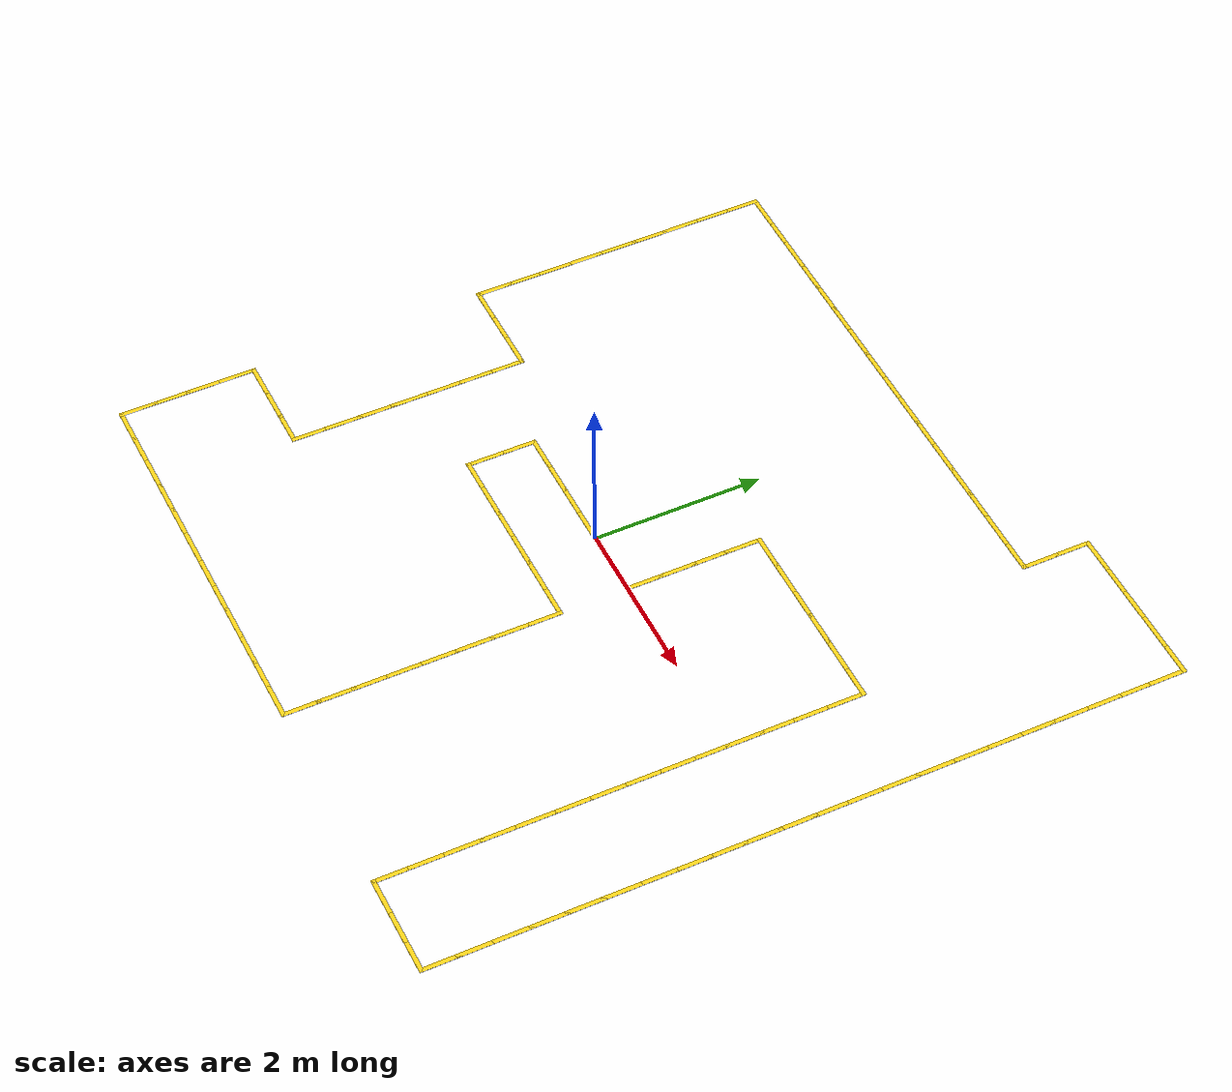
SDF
<sdf version="1.9">
 <world name="slrc_arena_from_image">
  <model name="hostile_path">
   <static>true</static>
   <link name="link">
    <visual name="seg0_vis">
     <pose>-3.8000 4.0000 0.0046 0.0000 0.0000 0.0000</pose>
     <geometry><box><size>0.4500 0.0500 0.0040</size></box></geometry>
     <material>
      <ambient>1.000 0.850 0.100 1.000</ambient>
      <diffuse>1.000 0.850 0.100 1.000</diffuse>
      <emissive>1.000 0.850 0.100 1.000</emissive>
      <specular>0 0 0 1</specular>
     </material>
    </visual>
    <visual name="seg1_vis">
     <pose>-3.4000 4.0000 0.0046 0.0000 0.0000 0.0000</pose>
     <geometry><box><size>0.4500 0.0500 0.0040</size></box></geometry>
     <material>
      <ambient>1.000 0.850 0.100 1.000</ambient>
      <diffuse>1.000 0.850 0.100 1.000</diffuse>
      <emissive>1.000 0.850 0.100 1.000</emissive>
      <specular>0 0 0 1</specular>
     </material>
    </visual>
    <visual name="seg2_vis">
     <pose>-3.0000 4.0000 0.0046 0.0000 0.0000 0.0000</pose>
     <geometry><box><size>0.4500 0.0500 0.0040</size></box></geometry>
     <material>
      <ambient>1.000 0.850 0.100 1.000</ambient>
      <diffuse>1.000 0.850 0.100 1.000</diffuse>
      <emissive>1.000 0.850 0.100 1.000</emissive>
      <specular>0 0 0 1</specular>
     </material>
    </visual>
    <visual name="seg3_vis">
     <pose>-2.6000 4.0000 0.0046 0.0000 0.0000 0.0000</pose>
     <geometry><box><size>0.4500 0.0500 0.0040</size></box></geometry>
     <material>
      <ambient>1.000 0.850 0.100 1.000</ambient>
      <diffuse>1.000 0.850 0.100 1.000</diffuse>
      <emissive>1.000 0.850 0.100 1.000</emissive>
      <specular>0 0 0 1</specular>
     </material>
    </visual>
    <visual name="seg4_vis">
     <pose>-2.2000 4.0000 0.0046 0.0000 0.0000 0.0000</pose>
     <geometry><box><size>0.4500 0.0500 0.0040</size></box></geometry>
     <material>
      <ambient>1.000 0.850 0.100 1.000</ambient>
      <diffuse>1.000 0.850 0.100 1.000</diffuse>
      <emissive>1.000 0.850 0.100 1.000</emissive>
      <specular>0 0 0 1</specular>
     </material>
    </visual>
    <visual name="seg5_vis">
     <pose>-1.8000 4.0000 0.0046 0.0000 0.0000 0.0000</pose>
     <geometry><box><size>0.4500 0.0500 0.0040</size></box></geometry>
     <material>
      <ambient>1.000 0.850 0.100 1.000</ambient>
      <diffuse>1.000 0.850 0.100 1.000</diffuse>
      <emissive>1.000 0.850 0.100 1.000</emissive>
      <specular>0 0 0 1</specular>
     </material>
    </visual>
    <visual name="seg6_vis">
     <pose>-1.4000 4.0000 0.0046 0.0000 0.0000 0.0000</pose>
     <geometry><box><size>0.4500 0.0500 0.0040</size></box></geometry>
     <material>
      <ambient>1.000 0.850 0.100 1.000</ambient>
      <diffuse>1.000 0.850 0.100 1.000</diffuse>
      <emissive>1.000 0.850 0.100 1.000</emissive>
      <specular>0 0 0 1</specular>
     </material>
    </visual>
    <visual name="seg7_vis">
     <pose>-1.0000 4.0000 0.0046 0.0000 0.0000 0.0000</pose>
     <geometry><box><size>0.4500 0.0500 0.0040</size></box></geometry>
     <material>
      <ambient>1.000 0.850 0.100 1.000</ambient>
      <diffuse>1.000 0.850 0.100 1.000</diffuse>
      <emissive>1.000 0.850 0.100 1.000</emissive>
      <specular>0 0 0 1</specular>
     </material>
    </visual>
    <visual name="seg8_vis">
     <pose>-0.6000 4.0000 0.0046 0.0000 0.0000 0.0000</pose>
     <geometry><box><size>0.4500 0.0500 0.0040</size></box></geometry>
     <material>
      <ambient>1.000 0.850 0.100 1.000</ambient>
      <diffuse>1.000 0.850 0.100 1.000</diffuse>
      <emissive>1.000 0.850 0.100 1.000</emissive>
      <specular>0 0 0 1</specular>
     </material>
    </visual>
    <visual name="seg9_vis">
     <pose>-0.2000 4.0000 0.0046 0.0000 0.0000 0.0000</pose>
     <geometry><box><size>0.4500 0.0500 0.0040</size></box></geometry>
     <material>
      <ambient>1.000 0.850 0.100 1.000</ambient>
      <diffuse>1.000 0.850 0.100 1.000</diffuse>
      <emissive>1.000 0.850 0.100 1.000</emissive>
      <specular>0 0 0 1</specular>
     </material>
    </visual>
    <visual name="seg10_vis">
     <pose>0.2000 4.0000 0.0046 0.0000 0.0000 0.0000</pose>
     <geometry><box><size>0.4500 0.0500 0.0040</size></box></geometry>
     <material>
      <ambient>1.000 0.850 0.100 1.000</ambient>
      <diffuse>1.000 0.850 0.100 1.000</diffuse>
      <emissive>1.000 0.850 0.100 1.000</emissive>
      <specular>0 0 0 1</specular>
     </material>
    </visual>
    <visual name="seg11_vis">
     <pose>0.6000 4.0000 0.0046 0.0000 0.0000 0.0000</pose>
     <geometry><box><size>0.4500 0.0500 0.0040</size></box></geometry>
     <material>
      <ambient>1.000 0.850 0.100 1.000</ambient>
      <diffuse>1.000 0.850 0.100 1.000</diffuse>
      <emissive>1.000 0.850 0.100 1.000</emissive>
      <specular>0 0 0 1</specular>
     </material>
    </visual>
    <visual name="seg12_vis">
     <pose>1.0000 4.0000 0.0046 0.0000 0.0000 0.0000</pose>
     <geometry><box><size>0.4500 0.0500 0.0040</size></box></geometry>
     <material>
      <ambient>1.000 0.850 0.100 1.000</ambient>
      <diffuse>1.000 0.850 0.100 1.000</diffuse>
      <emissive>1.000 0.850 0.100 1.000</emissive>
      <specular>0 0 0 1</specular>
     </material>
    </visual>
    <visual name="seg13_vis">
     <pose>1.4000 4.0000 0.0046 0.0000 0.0000 0.0000</pose>
     <geometry><box><size>0.4500 0.0500 0.0040</size></box></geometry>
     <material>
      <ambient>1.000 0.850 0.100 1.000</ambient>
      <diffuse>1.000 0.850 0.100 1.000</diffuse>
      <emissive>1.000 0.850 0.100 1.000</emissive>
      <specular>0 0 0 1</specular>
     </material>
    </visual>
    <visual name="seg14_vis">
     <pose>1.8000 4.0000 0.0046 0.0000 0.0000 0.0000</pose>
     <geometry><box><size>0.4500 0.0500 0.0040</size></box></geometry>
     <material>
      <ambient>1.000 0.850 0.100 1.000</ambient>
      <diffuse>1.000 0.850 0.100 1.000</diffuse>
      <emissive>1.000 0.850 0.100 1.000</emissive>
      <specular>0 0 0 1</specular>
     </material>
    </visual>
    <visual name="seg15_vis">
     <pose>2.2000 4.0000 0.0046 0.0000 0.0000 0.0000</pose>
     <geometry><box><size>0.4500 0.0500 0.0040</size></box></geometry>
     <material>
      <ambient>1.000 0.850 0.100 1.000</ambient>
      <diffuse>1.000 0.850 0.100 1.000</diffuse>
      <emissive>1.000 0.850 0.100 1.000</emissive>
      <specular>0 0 0 1</specular>
     </material>
    </visual>
    <visual name="seg16_vis">
     <pose>2.4000 4.2000 0.0046 0.0000 0.0000 0.0000</pose>
     <geometry><box><size>0.0500 0.4500 0.0040</size></box></geometry>
     <material>
      <ambient>1.000 0.850 0.100 1.000</ambient>
      <diffuse>1.000 0.850 0.100 1.000</diffuse>
      <emissive>1.000 0.850 0.100 1.000</emissive>
      <specular>0 0 0 1</specular>
     </material>
    </visual>
    <visual name="seg17_vis">
     <pose>2.4000 4.6000 0.0046 0.0000 0.0000 0.0000</pose>
     <geometry><box><size>0.0500 0.4500 0.0040</size></box></geometry>
     <material>
      <ambient>1.000 0.850 0.100 1.000</ambient>
      <diffuse>1.000 0.850 0.100 1.000</diffuse>
      <emissive>1.000 0.850 0.100 1.000</emissive>
      <specular>0 0 0 1</specular>
     </material>
    </visual>
    <visual name="seg18_vis">
     <pose>2.6000 4.8000 0.0046 0.0000 0.0000 0.0000</pose>
     <geometry><box><size>0.4500 0.0500 0.0040</size></box></geometry>
     <material>
      <ambient>1.000 0.850 0.100 1.000</ambient>
      <diffuse>1.000 0.850 0.100 1.000</diffuse>
      <emissive>1.000 0.850 0.100 1.000</emissive>
      <specular>0 0 0 1</specular>
     </material>
    </visual>
    <visual name="seg19_vis">
     <pose>3.0000 4.8000 0.0046 0.0000 0.0000 0.0000</pose>
     <geometry><box><size>0.4500 0.0500 0.0040</size></box></geometry>
     <material>
      <ambient>1.000 0.850 0.100 1.000</ambient>
      <diffuse>1.000 0.850 0.100 1.000</diffuse>
      <emissive>1.000 0.850 0.100 1.000</emissive>
      <specular>0 0 0 1</specular>
     </material>
    </visual>
    <visual name="seg20_vis">
     <pose>3.4000 4.8000 0.0046 0.0000 0.0000 0.0000</pose>
     <geometry><box><size>0.4500 0.0500 0.0040</size></box></geometry>
     <material>
      <ambient>1.000 0.850 0.100 1.000</ambient>
      <diffuse>1.000 0.850 0.100 1.000</diffuse>
      <emissive>1.000 0.850 0.100 1.000</emissive>
      <specular>0 0 0 1</specular>
     </material>
    </visual>
    <visual name="seg21_vis">
     <pose>3.8000 4.8000 0.0046 0.0000 0.0000 0.0000</pose>
     <geometry><box><size>0.4500 0.0500 0.0040</size></box></geometry>
     <material>
      <ambient>1.000 0.850 0.100 1.000</ambient>
      <diffuse>1.000 0.850 0.100 1.000</diffuse>
      <emissive>1.000 0.850 0.100 1.000</emissive>
      <specular>0 0 0 1</specular>
     </material>
    </visual>
    <visual name="seg22_vis">
     <pose>4.2000 4.8000 0.0046 0.0000 0.0000 0.0000</pose>
     <geometry><box><size>0.4500 0.0500 0.0040</size></box></geometry>
     <material>
      <ambient>1.000 0.850 0.100 1.000</ambient>
      <diffuse>1.000 0.850 0.100 1.000</diffuse>
      <emissive>1.000 0.850 0.100 1.000</emissive>
      <specular>0 0 0 1</specular>
     </material>
    </visual>
    <visual name="seg23_vis">
     <pose>4.4000 4.6000 0.0046 0.0000 0.0000 0.0000</pose>
     <geometry><box><size>0.0500 0.4500 0.0040</size></box></geometry>
     <material>
      <ambient>1.000 0.850 0.100 1.000</ambient>
      <diffuse>1.000 0.850 0.100 1.000</diffuse>
      <emissive>1.000 0.850 0.100 1.000</emissive>
      <specular>0 0 0 1</specular>
     </material>
    </visual>
    <visual name="seg24_vis">
     <pose>4.4000 4.2000 0.0046 0.0000 0.0000 0.0000</pose>
     <geometry><box><size>0.0500 0.4500 0.0040</size></box></geometry>
     <material>
      <ambient>1.000 0.850 0.100 1.000</ambient>
      <diffuse>1.000 0.850 0.100 1.000</diffuse>
      <emissive>1.000 0.850 0.100 1.000</emissive>
      <specular>0 0 0 1</specular>
     </material>
    </visual>
    <visual name="seg25_vis">
     <pose>4.4000 3.8000 0.0046 0.0000 0.0000 0.0000</pose>
     <geometry><box><size>0.0500 0.4500 0.0040</size></box></geometry>
     <material>
      <ambient>1.000 0.850 0.100 1.000</ambient>
      <diffuse>1.000 0.850 0.100 1.000</diffuse>
      <emissive>1.000 0.850 0.100 1.000</emissive>
      <specular>0 0 0 1</specular>
     </material>
    </visual>
    <visual name="seg26_vis">
     <pose>4.4000 3.4000 0.0046 0.0000 0.0000 0.0000</pose>
     <geometry><box><size>0.0500 0.4500 0.0040</size></box></geometry>
     <material>
      <ambient>1.000 0.850 0.100 1.000</ambient>
      <diffuse>1.000 0.850 0.100 1.000</diffuse>
      <emissive>1.000 0.850 0.100 1.000</emissive>
      <specular>0 0 0 1</specular>
     </material>
    </visual>
    <visual name="seg27_vis">
     <pose>4.4000 3.0000 0.0046 0.0000 0.0000 0.0000</pose>
     <geometry><box><size>0.0500 0.4500 0.0040</size></box></geometry>
     <material>
      <ambient>1.000 0.850 0.100 1.000</ambient>
      <diffuse>1.000 0.850 0.100 1.000</diffuse>
      <emissive>1.000 0.850 0.100 1.000</emissive>
      <specular>0 0 0 1</specular>
     </material>
    </visual>
    <visual name="seg28_vis">
     <pose>4.4000 2.6000 0.0046 0.0000 0.0000 0.0000</pose>
     <geometry><box><size>0.0500 0.4500 0.0040</size></box></geometry>
     <material>
      <ambient>1.000 0.850 0.100 1.000</ambient>
      <diffuse>1.000 0.850 0.100 1.000</diffuse>
      <emissive>1.000 0.850 0.100 1.000</emissive>
      <specular>0 0 0 1</specular>
     </material>
    </visual>
    <visual name="seg29_vis">
     <pose>4.4000 2.2000 0.0046 0.0000 0.0000 0.0000</pose>
     <geometry><box><size>0.0500 0.4500 0.0040</size></box></geometry>
     <material>
      <ambient>1.000 0.850 0.100 1.000</ambient>
      <diffuse>1.000 0.850 0.100 1.000</diffuse>
      <emissive>1.000 0.850 0.100 1.000</emissive>
      <specular>0 0 0 1</specular>
     </material>
    </visual>
    <visual name="seg30_vis">
     <pose>4.4000 1.8000 0.0046 0.0000 0.0000 0.0000</pose>
     <geometry><box><size>0.0500 0.4500 0.0040</size></box></geometry>
     <material>
      <ambient>1.000 0.850 0.100 1.000</ambient>
      <diffuse>1.000 0.850 0.100 1.000</diffuse>
      <emissive>1.000 0.850 0.100 1.000</emissive>
      <specular>0 0 0 1</specular>
     </material>
    </visual>
    <visual name="seg31_vis">
     <pose>4.4000 1.4000 0.0046 0.0000 0.0000 0.0000</pose>
     <geometry><box><size>0.0500 0.4500 0.0040</size></box></geometry>
     <material>
      <ambient>1.000 0.850 0.100 1.000</ambient>
      <diffuse>1.000 0.850 0.100 1.000</diffuse>
      <emissive>1.000 0.850 0.100 1.000</emissive>
      <specular>0 0 0 1</specular>
     </material>
    </visual>
    <visual name="seg32_vis">
     <pose>4.4000 1.0000 0.0046 0.0000 0.0000 0.0000</pose>
     <geometry><box><size>0.0500 0.4500 0.0040</size></box></geometry>
     <material>
      <ambient>1.000 0.850 0.100 1.000</ambient>
      <diffuse>1.000 0.850 0.100 1.000</diffuse>
      <emissive>1.000 0.850 0.100 1.000</emissive>
      <specular>0 0 0 1</specular>
     </material>
    </visual>
    <visual name="seg33_vis">
     <pose>4.4000 0.6000 0.0046 0.0000 0.0000 0.0000</pose>
     <geometry><box><size>0.0500 0.4500 0.0040</size></box></geometry>
     <material>
      <ambient>1.000 0.850 0.100 1.000</ambient>
      <diffuse>1.000 0.850 0.100 1.000</diffuse>
      <emissive>1.000 0.850 0.100 1.000</emissive>
      <specular>0 0 0 1</specular>
     </material>
    </visual>
    <visual name="seg34_vis">
     <pose>4.4000 0.2000 0.0046 0.0000 0.0000 0.0000</pose>
     <geometry><box><size>0.0500 0.4500 0.0040</size></box></geometry>
     <material>
      <ambient>1.000 0.850 0.100 1.000</ambient>
      <diffuse>1.000 0.850 0.100 1.000</diffuse>
      <emissive>1.000 0.850 0.100 1.000</emissive>
      <specular>0 0 0 1</specular>
     </material>
    </visual>
    <visual name="seg35_vis">
     <pose>4.4000 -0.2000 0.0046 0.0000 0.0000 0.0000</pose>
     <geometry><box><size>0.0500 0.4500 0.0040</size></box></geometry>
     <material>
      <ambient>1.000 0.850 0.100 1.000</ambient>
      <diffuse>1.000 0.850 0.100 1.000</diffuse>
      <emissive>1.000 0.850 0.100 1.000</emissive>
      <specular>0 0 0 1</specular>
     </material>
    </visual>
    <visual name="seg36_vis">
     <pose>4.4000 -0.6000 0.0046 0.0000 0.0000 0.0000</pose>
     <geometry><box><size>0.0500 0.4500 0.0040</size></box></geometry>
     <material>
      <ambient>1.000 0.850 0.100 1.000</ambient>
      <diffuse>1.000 0.850 0.100 1.000</diffuse>
      <emissive>1.000 0.850 0.100 1.000</emissive>
      <specular>0 0 0 1</specular>
     </material>
    </visual>
    <visual name="seg37_vis">
     <pose>4.4000 -1.0000 0.0046 0.0000 0.0000 0.0000</pose>
     <geometry><box><size>0.0500 0.4500 0.0040</size></box></geometry>
     <material>
      <ambient>1.000 0.850 0.100 1.000</ambient>
      <diffuse>1.000 0.850 0.100 1.000</diffuse>
      <emissive>1.000 0.850 0.100 1.000</emissive>
      <specular>0 0 0 1</specular>
     </material>
    </visual>
    <visual name="seg38_vis">
     <pose>4.4000 -1.4000 0.0046 0.0000 0.0000 0.0000</pose>
     <geometry><box><size>0.0500 0.4500 0.0040</size></box></geometry>
     <material>
      <ambient>1.000 0.850 0.100 1.000</ambient>
      <diffuse>1.000 0.850 0.100 1.000</diffuse>
      <emissive>1.000 0.850 0.100 1.000</emissive>
      <specular>0 0 0 1</specular>
     </material>
    </visual>
    <visual name="seg39_vis">
     <pose>4.4000 -1.8000 0.0046 0.0000 0.0000 0.0000</pose>
     <geometry><box><size>0.0500 0.4500 0.0040</size></box></geometry>
     <material>
      <ambient>1.000 0.850 0.100 1.000</ambient>
      <diffuse>1.000 0.850 0.100 1.000</diffuse>
      <emissive>1.000 0.850 0.100 1.000</emissive>
      <specular>0 0 0 1</specular>
     </material>
    </visual>
    <visual name="seg40_vis">
     <pose>4.4000 -2.2000 0.0046 0.0000 0.0000 0.0000</pose>
     <geometry><box><size>0.0500 0.4500 0.0040</size></box></geometry>
     <material>
      <ambient>1.000 0.850 0.100 1.000</ambient>
      <diffuse>1.000 0.850 0.100 1.000</diffuse>
      <emissive>1.000 0.850 0.100 1.000</emissive>
      <specular>0 0 0 1</specular>
     </material>
    </visual>
    <visual name="seg41_vis">
     <pose>4.4000 -2.6000 0.0046 0.0000 0.0000 0.0000</pose>
     <geometry><box><size>0.0500 0.4500 0.0040</size></box></geometry>
     <material>
      <ambient>1.000 0.850 0.100 1.000</ambient>
      <diffuse>1.000 0.850 0.100 1.000</diffuse>
      <emissive>1.000 0.850 0.100 1.000</emissive>
      <specular>0 0 0 1</specular>
     </material>
    </visual>
    <visual name="seg42_vis">
     <pose>4.4000 -3.0000 0.0046 0.0000 0.0000 0.0000</pose>
     <geometry><box><size>0.0500 0.4500 0.0040</size></box></geometry>
     <material>
      <ambient>1.000 0.850 0.100 1.000</ambient>
      <diffuse>1.000 0.850 0.100 1.000</diffuse>
      <emissive>1.000 0.850 0.100 1.000</emissive>
      <specular>0 0 0 1</specular>
     </material>
    </visual>
    <visual name="seg43_vis">
     <pose>4.4000 -3.4000 0.0046 0.0000 0.0000 0.0000</pose>
     <geometry><box><size>0.0500 0.4500 0.0040</size></box></geometry>
     <material>
      <ambient>1.000 0.850 0.100 1.000</ambient>
      <diffuse>1.000 0.850 0.100 1.000</diffuse>
      <emissive>1.000 0.850 0.100 1.000</emissive>
      <specular>0 0 0 1</specular>
     </material>
    </visual>
    <visual name="seg44_vis">
     <pose>4.4000 -3.8000 0.0046 0.0000 0.0000 0.0000</pose>
     <geometry><box><size>0.0500 0.4500 0.0040</size></box></geometry>
     <material>
      <ambient>1.000 0.850 0.100 1.000</ambient>
      <diffuse>1.000 0.850 0.100 1.000</diffuse>
      <emissive>1.000 0.850 0.100 1.000</emissive>
      <specular>0 0 0 1</specular>
     </material>
    </visual>
    <visual name="seg45_vis">
     <pose>4.2000 -4.0000 0.0046 0.0000 0.0000 0.0000</pose>
     <geometry><box><size>0.4500 0.0500 0.0040</size></box></geometry>
     <material>
      <ambient>1.000 0.850 0.100 1.000</ambient>
      <diffuse>1.000 0.850 0.100 1.000</diffuse>
      <emissive>1.000 0.850 0.100 1.000</emissive>
      <specular>0 0 0 1</specular>
     </material>
    </visual>
    <visual name="seg46_vis">
     <pose>3.8000 -4.0000 0.0046 0.0000 0.0000 0.0000</pose>
     <geometry><box><size>0.4500 0.0500 0.0040</size></box></geometry>
     <material>
      <ambient>1.000 0.850 0.100 1.000</ambient>
      <diffuse>1.000 0.850 0.100 1.000</diffuse>
      <emissive>1.000 0.850 0.100 1.000</emissive>
      <specular>0 0 0 1</specular>
     </material>
    </visual>
    <visual name="seg47_vis">
     <pose>3.4000 -4.0000 0.0046 0.0000 0.0000 0.0000</pose>
     <geometry><box><size>0.4500 0.0500 0.0040</size></box></geometry>
     <material>
      <ambient>1.000 0.850 0.100 1.000</ambient>
      <diffuse>1.000 0.850 0.100 1.000</diffuse>
      <emissive>1.000 0.850 0.100 1.000</emissive>
      <specular>0 0 0 1</specular>
     </material>
    </visual>
    <visual name="seg48_vis">
     <pose>3.2000 -3.8000 0.0046 0.0000 0.0000 0.0000</pose>
     <geometry><box><size>0.0500 0.4500 0.0040</size></box></geometry>
     <material>
      <ambient>1.000 0.850 0.100 1.000</ambient>
      <diffuse>1.000 0.850 0.100 1.000</diffuse>
      <emissive>1.000 0.850 0.100 1.000</emissive>
      <specular>0 0 0 1</specular>
     </material>
    </visual>
    <visual name="seg49_vis">
     <pose>3.2000 -3.4000 0.0046 0.0000 0.0000 0.0000</pose>
     <geometry><box><size>0.0500 0.4500 0.0040</size></box></geometry>
     <material>
      <ambient>1.000 0.850 0.100 1.000</ambient>
      <diffuse>1.000 0.850 0.100 1.000</diffuse>
      <emissive>1.000 0.850 0.100 1.000</emissive>
      <specular>0 0 0 1</specular>
     </material>
    </visual>
    <visual name="seg50_vis">
     <pose>3.2000 -3.0000 0.0046 0.0000 0.0000 0.0000</pose>
     <geometry><box><size>0.0500 0.4500 0.0040</size></box></geometry>
     <material>
      <ambient>1.000 0.850 0.100 1.000</ambient>
      <diffuse>1.000 0.850 0.100 1.000</diffuse>
      <emissive>1.000 0.850 0.100 1.000</emissive>
      <specular>0 0 0 1</specular>
     </material>
    </visual>
    <visual name="seg51_vis">
     <pose>3.2000 -2.6000 0.0046 0.0000 0.0000 0.0000</pose>
     <geometry><box><size>0.0500 0.4500 0.0040</size></box></geometry>
     <material>
      <ambient>1.000 0.850 0.100 1.000</ambient>
      <diffuse>1.000 0.850 0.100 1.000</diffuse>
      <emissive>1.000 0.850 0.100 1.000</emissive>
      <specular>0 0 0 1</specular>
     </material>
    </visual>
    <visual name="seg52_vis">
     <pose>3.2000 -2.2000 0.0046 0.0000 0.0000 0.0000</pose>
     <geometry><box><size>0.0500 0.4500 0.0040</size></box></geometry>
     <material>
      <ambient>1.000 0.850 0.100 1.000</ambient>
      <diffuse>1.000 0.850 0.100 1.000</diffuse>
      <emissive>1.000 0.850 0.100 1.000</emissive>
      <specular>0 0 0 1</specular>
     </material>
    </visual>
    <visual name="seg53_vis">
     <pose>3.2000 -1.8000 0.0046 0.0000 0.0000 0.0000</pose>
     <geometry><box><size>0.0500 0.4500 0.0040</size></box></geometry>
     <material>
      <ambient>1.000 0.850 0.100 1.000</ambient>
      <diffuse>1.000 0.850 0.100 1.000</diffuse>
      <emissive>1.000 0.850 0.100 1.000</emissive>
      <specular>0 0 0 1</specular>
     </material>
    </visual>
    <visual name="seg54_vis">
     <pose>3.2000 -1.4000 0.0046 0.0000 0.0000 0.0000</pose>
     <geometry><box><size>0.0500 0.4500 0.0040</size></box></geometry>
     <material>
      <ambient>1.000 0.850 0.100 1.000</ambient>
      <diffuse>1.000 0.850 0.100 1.000</diffuse>
      <emissive>1.000 0.850 0.100 1.000</emissive>
      <specular>0 0 0 1</specular>
     </material>
    </visual>
    <visual name="seg55_vis">
     <pose>3.2000 -1.0000 0.0046 0.0000 0.0000 0.0000</pose>
     <geometry><box><size>0.0500 0.4500 0.0040</size></box></geometry>
     <material>
      <ambient>1.000 0.850 0.100 1.000</ambient>
      <diffuse>1.000 0.850 0.100 1.000</diffuse>
      <emissive>1.000 0.850 0.100 1.000</emissive>
      <specular>0 0 0 1</specular>
     </material>
    </visual>
    <visual name="seg56_vis">
     <pose>3.2000 -0.6000 0.0046 0.0000 0.0000 0.0000</pose>
     <geometry><box><size>0.0500 0.4500 0.0040</size></box></geometry>
     <material>
      <ambient>1.000 0.850 0.100 1.000</ambient>
      <diffuse>1.000 0.850 0.100 1.000</diffuse>
      <emissive>1.000 0.850 0.100 1.000</emissive>
      <specular>0 0 0 1</specular>
     </material>
    </visual>
    <visual name="seg57_vis">
     <pose>3.2000 -0.2000 0.0046 0.0000 0.0000 0.0000</pose>
     <geometry><box><size>0.0500 0.4500 0.0040</size></box></geometry>
     <material>
      <ambient>1.000 0.850 0.100 1.000</ambient>
      <diffuse>1.000 0.850 0.100 1.000</diffuse>
      <emissive>1.000 0.850 0.100 1.000</emissive>
      <specular>0 0 0 1</specular>
     </material>
    </visual>
    <visual name="seg58_vis">
     <pose>3.2000 0.2000 0.0046 0.0000 0.0000 0.0000</pose>
     <geometry><box><size>0.0500 0.4500 0.0040</size></box></geometry>
     <material>
      <ambient>1.000 0.850 0.100 1.000</ambient>
      <diffuse>1.000 0.850 0.100 1.000</diffuse>
      <emissive>1.000 0.850 0.100 1.000</emissive>
      <specular>0 0 0 1</specular>
     </material>
    </visual>
    <visual name="seg59_vis">
     <pose>3.2000 0.6000 0.0046 0.0000 0.0000 0.0000</pose>
     <geometry><box><size>0.0500 0.4500 0.0040</size></box></geometry>
     <material>
      <ambient>1.000 0.850 0.100 1.000</ambient>
      <diffuse>1.000 0.850 0.100 1.000</diffuse>
      <emissive>1.000 0.850 0.100 1.000</emissive>
      <specular>0 0 0 1</specular>
     </material>
    </visual>
    <visual name="seg60_vis">
     <pose>3.2000 1.0000 0.0046 0.0000 0.0000 0.0000</pose>
     <geometry><box><size>0.0500 0.4500 0.0040</size></box></geometry>
     <material>
      <ambient>1.000 0.850 0.100 1.000</ambient>
      <diffuse>1.000 0.850 0.100 1.000</diffuse>
      <emissive>1.000 0.850 0.100 1.000</emissive>
      <specular>0 0 0 1</specular>
     </material>
    </visual>
    <visual name="seg61_vis">
     <pose>3.2000 1.4000 0.0046 0.0000 0.0000 0.0000</pose>
     <geometry><box><size>0.0500 0.4500 0.0040</size></box></geometry>
     <material>
      <ambient>1.000 0.850 0.100 1.000</ambient>
      <diffuse>1.000 0.850 0.100 1.000</diffuse>
      <emissive>1.000 0.850 0.100 1.000</emissive>
      <specular>0 0 0 1</specular>
     </material>
    </visual>
    <visual name="seg62_vis">
     <pose>3.0000 1.6000 0.0046 0.0000 0.0000 0.0000</pose>
     <geometry><box><size>0.4500 0.0500 0.0040</size></box></geometry>
     <material>
      <ambient>1.000 0.850 0.100 1.000</ambient>
      <diffuse>1.000 0.850 0.100 1.000</diffuse>
      <emissive>1.000 0.850 0.100 1.000</emissive>
      <specular>0 0 0 1</specular>
     </material>
    </visual>
    <visual name="seg63_vis">
     <pose>2.6000 1.6000 0.0046 0.0000 0.0000 0.0000</pose>
     <geometry><box><size>0.4500 0.0500 0.0040</size></box></geometry>
     <material>
      <ambient>1.000 0.850 0.100 1.000</ambient>
      <diffuse>1.000 0.850 0.100 1.000</diffuse>
      <emissive>1.000 0.850 0.100 1.000</emissive>
      <specular>0 0 0 1</specular>
     </material>
    </visual>
    <visual name="seg64_vis">
     <pose>2.2000 1.6000 0.0046 0.0000 0.0000 0.0000</pose>
     <geometry><box><size>0.4500 0.0500 0.0040</size></box></geometry>
     <material>
      <ambient>1.000 0.850 0.100 1.000</ambient>
      <diffuse>1.000 0.850 0.100 1.000</diffuse>
      <emissive>1.000 0.850 0.100 1.000</emissive>
      <specular>0 0 0 1</specular>
     </material>
    </visual>
    <visual name="seg65_vis">
     <pose>1.8000 1.6000 0.0046 0.0000 0.0000 0.0000</pose>
     <geometry><box><size>0.4500 0.0500 0.0040</size></box></geometry>
     <material>
      <ambient>1.000 0.850 0.100 1.000</ambient>
      <diffuse>1.000 0.850 0.100 1.000</diffuse>
      <emissive>1.000 0.850 0.100 1.000</emissive>
      <specular>0 0 0 1</specular>
     </material>
    </visual>
    <visual name="seg66_vis">
     <pose>1.4000 1.6000 0.0046 0.0000 0.0000 0.0000</pose>
     <geometry><box><size>0.4500 0.0500 0.0040</size></box></geometry>
     <material>
      <ambient>1.000 0.850 0.100 1.000</ambient>
      <diffuse>1.000 0.850 0.100 1.000</diffuse>
      <emissive>1.000 0.850 0.100 1.000</emissive>
      <specular>0 0 0 1</specular>
     </material>
    </visual>
    <visual name="seg67_vis">
     <pose>1.0000 1.6000 0.0046 0.0000 0.0000 0.0000</pose>
     <geometry><box><size>0.4500 0.0500 0.0040</size></box></geometry>
     <material>
      <ambient>1.000 0.850 0.100 1.000</ambient>
      <diffuse>1.000 0.850 0.100 1.000</diffuse>
      <emissive>1.000 0.850 0.100 1.000</emissive>
      <specular>0 0 0 1</specular>
     </material>
    </visual>
    <visual name="seg68_vis">
     <pose>0.8000 1.4000 0.0046 0.0000 0.0000 0.0000</pose>
     <geometry><box><size>0.0500 0.4500 0.0040</size></box></geometry>
     <material>
      <ambient>1.000 0.850 0.100 1.000</ambient>
      <diffuse>1.000 0.850 0.100 1.000</diffuse>
      <emissive>1.000 0.850 0.100 1.000</emissive>
      <specular>0 0 0 1</specular>
     </material>
    </visual>
    <visual name="seg69_vis">
     <pose>0.8000 1.0000 0.0046 0.0000 0.0000 0.0000</pose>
     <geometry><box><size>0.0500 0.4500 0.0040</size></box></geometry>
     <material>
      <ambient>1.000 0.850 0.100 1.000</ambient>
      <diffuse>1.000 0.850 0.100 1.000</diffuse>
      <emissive>1.000 0.850 0.100 1.000</emissive>
      <specular>0 0 0 1</specular>
     </material>
    </visual>
    <visual name="seg70_vis">
     <pose>0.8000 0.6000 0.0046 0.0000 0.0000 0.0000</pose>
     <geometry><box><size>0.0500 0.4500 0.0040</size></box></geometry>
     <material>
      <ambient>1.000 0.850 0.100 1.000</ambient>
      <diffuse>1.000 0.850 0.100 1.000</diffuse>
      <emissive>1.000 0.850 0.100 1.000</emissive>
      <specular>0 0 0 1</specular>
     </material>
    </visual>
    <visual name="seg71_vis">
     <pose>0.8000 0.2000 0.0046 0.0000 0.0000 0.0000</pose>
     <geometry><box><size>0.0500 0.4500 0.0040</size></box></geometry>
     <material>
      <ambient>1.000 0.850 0.100 1.000</ambient>
      <diffuse>1.000 0.850 0.100 1.000</diffuse>
      <emissive>1.000 0.850 0.100 1.000</emissive>
      <specular>0 0 0 1</specular>
     </material>
    </visual>
    <visual name="seg72_vis">
     <pose>0.6000 0.0000 0.0046 0.0000 0.0000 0.0000</pose>
     <geometry><box><size>0.4500 0.0500 0.0040</size></box></geometry>
     <material>
      <ambient>1.000 0.850 0.100 1.000</ambient>
      <diffuse>1.000 0.850 0.100 1.000</diffuse>
      <emissive>1.000 0.850 0.100 1.000</emissive>
      <specular>0 0 0 1</specular>
     </material>
    </visual>
    <visual name="seg73_vis">
     <pose>0.2000 0.0000 0.0046 0.0000 0.0000 0.0000</pose>
     <geometry><box><size>0.4500 0.0500 0.0040</size></box></geometry>
     <material>
      <ambient>1.000 0.850 0.100 1.000</ambient>
      <diffuse>1.000 0.850 0.100 1.000</diffuse>
      <emissive>1.000 0.850 0.100 1.000</emissive>
      <specular>0 0 0 1</specular>
     </material>
    </visual>
    <visual name="seg74_vis">
     <pose>-0.2000 0.0000 0.0046 0.0000 0.0000 0.0000</pose>
     <geometry><box><size>0.4500 0.0500 0.0040</size></box></geometry>
     <material>
      <ambient>1.000 0.850 0.100 1.000</ambient>
      <diffuse>1.000 0.850 0.100 1.000</diffuse>
      <emissive>1.000 0.850 0.100 1.000</emissive>
      <specular>0 0 0 1</specular>
     </material>
    </visual>
    <visual name="seg75_vis">
     <pose>-0.6000 0.0000 0.0046 0.0000 0.0000 0.0000</pose>
     <geometry><box><size>0.4500 0.0500 0.0040</size></box></geometry>
     <material>
      <ambient>1.000 0.850 0.100 1.000</ambient>
      <diffuse>1.000 0.850 0.100 1.000</diffuse>
      <emissive>1.000 0.850 0.100 1.000</emissive>
      <specular>0 0 0 1</specular>
     </material>
    </visual>
    <visual name="seg76_vis">
     <pose>-1.0000 0.0000 0.0046 0.0000 0.0000 0.0000</pose>
     <geometry><box><size>0.4500 0.0500 0.0040</size></box></geometry>
     <material>
      <ambient>1.000 0.850 0.100 1.000</ambient>
      <diffuse>1.000 0.850 0.100 1.000</diffuse>
      <emissive>1.000 0.850 0.100 1.000</emissive>
      <specular>0 0 0 1</specular>
     </material>
    </visual>
    <visual name="seg77_vis">
     <pose>-1.4000 0.0000 0.0046 0.0000 0.0000 0.0000</pose>
     <geometry><box><size>0.4500 0.0500 0.0040</size></box></geometry>
     <material>
      <ambient>1.000 0.850 0.100 1.000</ambient>
      <diffuse>1.000 0.850 0.100 1.000</diffuse>
      <emissive>1.000 0.850 0.100 1.000</emissive>
      <specular>0 0 0 1</specular>
     </material>
    </visual>
    <visual name="seg78_vis">
     <pose>-1.6000 -0.2000 0.0046 0.0000 0.0000 0.0000</pose>
     <geometry><box><size>0.0500 0.4500 0.0040</size></box></geometry>
     <material>
      <ambient>1.000 0.850 0.100 1.000</ambient>
      <diffuse>1.000 0.850 0.100 1.000</diffuse>
      <emissive>1.000 0.850 0.100 1.000</emissive>
      <specular>0 0 0 1</specular>
     </material>
    </visual>
    <visual name="seg79_vis">
     <pose>-1.6000 -0.6000 0.0046 0.0000 0.0000 0.0000</pose>
     <geometry><box><size>0.0500 0.4500 0.0040</size></box></geometry>
     <material>
      <ambient>1.000 0.850 0.100 1.000</ambient>
      <diffuse>1.000 0.850 0.100 1.000</diffuse>
      <emissive>1.000 0.850 0.100 1.000</emissive>
      <specular>0 0 0 1</specular>
     </material>
    </visual>
    <visual name="seg80_vis">
     <pose>-1.4000 -0.8000 0.0046 0.0000 0.0000 0.0000</pose>
     <geometry><box><size>0.4500 0.0500 0.0040</size></box></geometry>
     <material>
      <ambient>1.000 0.850 0.100 1.000</ambient>
      <diffuse>1.000 0.850 0.100 1.000</diffuse>
      <emissive>1.000 0.850 0.100 1.000</emissive>
      <specular>0 0 0 1</specular>
     </material>
    </visual>
    <visual name="seg81_vis">
     <pose>-1.0000 -0.8000 0.0046 0.0000 0.0000 0.0000</pose>
     <geometry><box><size>0.4500 0.0500 0.0040</size></box></geometry>
     <material>
      <ambient>1.000 0.850 0.100 1.000</ambient>
      <diffuse>1.000 0.850 0.100 1.000</diffuse>
      <emissive>1.000 0.850 0.100 1.000</emissive>
      <specular>0 0 0 1</specular>
     </material>
    </visual>
    <visual name="seg82_vis">
     <pose>-0.6000 -0.8000 0.0046 0.0000 0.0000 0.0000</pose>
     <geometry><box><size>0.4500 0.0500 0.0040</size></box></geometry>
     <material>
      <ambient>1.000 0.850 0.100 1.000</ambient>
      <diffuse>1.000 0.850 0.100 1.000</diffuse>
      <emissive>1.000 0.850 0.100 1.000</emissive>
      <specular>0 0 0 1</specular>
     </material>
    </visual>
    <visual name="seg83_vis">
     <pose>-0.2000 -0.8000 0.0046 0.0000 0.0000 0.0000</pose>
     <geometry><box><size>0.4500 0.0500 0.0040</size></box></geometry>
     <material>
      <ambient>1.000 0.850 0.100 1.000</ambient>
      <diffuse>1.000 0.850 0.100 1.000</diffuse>
      <emissive>1.000 0.850 0.100 1.000</emissive>
      <specular>0 0 0 1</specular>
     </material>
    </visual>
    <visual name="seg84_vis">
     <pose>0.2000 -0.8000 0.0046 0.0000 0.0000 0.0000</pose>
     <geometry><box><size>0.4500 0.0500 0.0040</size></box></geometry>
     <material>
      <ambient>1.000 0.850 0.100 1.000</ambient>
      <diffuse>1.000 0.850 0.100 1.000</diffuse>
      <emissive>1.000 0.850 0.100 1.000</emissive>
      <specular>0 0 0 1</specular>
     </material>
    </visual>
    <visual name="seg85_vis">
     <pose>0.6000 -0.8000 0.0046 0.0000 0.0000 0.0000</pose>
     <geometry><box><size>0.4500 0.0500 0.0040</size></box></geometry>
     <material>
      <ambient>1.000 0.850 0.100 1.000</ambient>
      <diffuse>1.000 0.850 0.100 1.000</diffuse>
      <emissive>1.000 0.850 0.100 1.000</emissive>
      <specular>0 0 0 1</specular>
     </material>
    </visual>
    <visual name="seg86_vis">
     <pose>0.8000 -1.0000 0.0046 0.0000 0.0000 0.0000</pose>
     <geometry><box><size>0.0500 0.4500 0.0040</size></box></geometry>
     <material>
      <ambient>1.000 0.850 0.100 1.000</ambient>
      <diffuse>1.000 0.850 0.100 1.000</diffuse>
      <emissive>1.000 0.850 0.100 1.000</emissive>
      <specular>0 0 0 1</specular>
     </material>
    </visual>
    <visual name="seg87_vis">
     <pose>0.8000 -1.4000 0.0046 0.0000 0.0000 0.0000</pose>
     <geometry><box><size>0.0500 0.4500 0.0040</size></box></geometry>
     <material>
      <ambient>1.000 0.850 0.100 1.000</ambient>
      <diffuse>1.000 0.850 0.100 1.000</diffuse>
      <emissive>1.000 0.850 0.100 1.000</emissive>
      <specular>0 0 0 1</specular>
     </material>
    </visual>
    <visual name="seg88_vis">
     <pose>0.8000 -1.8000 0.0046 0.0000 0.0000 0.0000</pose>
     <geometry><box><size>0.0500 0.4500 0.0040</size></box></geometry>
     <material>
      <ambient>1.000 0.850 0.100 1.000</ambient>
      <diffuse>1.000 0.850 0.100 1.000</diffuse>
      <emissive>1.000 0.850 0.100 1.000</emissive>
      <specular>0 0 0 1</specular>
     </material>
    </visual>
    <visual name="seg89_vis">
     <pose>0.8000 -2.2000 0.0046 0.0000 0.0000 0.0000</pose>
     <geometry><box><size>0.0500 0.4500 0.0040</size></box></geometry>
     <material>
      <ambient>1.000 0.850 0.100 1.000</ambient>
      <diffuse>1.000 0.850 0.100 1.000</diffuse>
      <emissive>1.000 0.850 0.100 1.000</emissive>
      <specular>0 0 0 1</specular>
     </material>
    </visual>
    <visual name="seg90_vis">
     <pose>0.8000 -2.6000 0.0046 0.0000 0.0000 0.0000</pose>
     <geometry><box><size>0.0500 0.4500 0.0040</size></box></geometry>
     <material>
      <ambient>1.000 0.850 0.100 1.000</ambient>
      <diffuse>1.000 0.850 0.100 1.000</diffuse>
      <emissive>1.000 0.850 0.100 1.000</emissive>
      <specular>0 0 0 1</specular>
     </material>
    </visual>
    <visual name="seg91_vis">
     <pose>0.8000 -3.0000 0.0046 0.0000 0.0000 0.0000</pose>
     <geometry><box><size>0.0500 0.4500 0.0040</size></box></geometry>
     <material>
      <ambient>1.000 0.850 0.100 1.000</ambient>
      <diffuse>1.000 0.850 0.100 1.000</diffuse>
      <emissive>1.000 0.850 0.100 1.000</emissive>
      <specular>0 0 0 1</specular>
     </material>
    </visual>
    <visual name="seg92_vis">
     <pose>0.8000 -3.4000 0.0046 0.0000 0.0000 0.0000</pose>
     <geometry><box><size>0.0500 0.4500 0.0040</size></box></geometry>
     <material>
      <ambient>1.000 0.850 0.100 1.000</ambient>
      <diffuse>1.000 0.850 0.100 1.000</diffuse>
      <emissive>1.000 0.850 0.100 1.000</emissive>
      <specular>0 0 0 1</specular>
     </material>
    </visual>
    <visual name="seg93_vis">
     <pose>0.8000 -3.8000 0.0046 0.0000 0.0000 0.0000</pose>
     <geometry><box><size>0.0500 0.4500 0.0040</size></box></geometry>
     <material>
      <ambient>1.000 0.850 0.100 1.000</ambient>
      <diffuse>1.000 0.850 0.100 1.000</diffuse>
      <emissive>1.000 0.850 0.100 1.000</emissive>
      <specular>0 0 0 1</specular>
     </material>
    </visual>
    <visual name="seg94_vis">
     <pose>0.6000 -4.0000 0.0046 0.0000 0.0000 0.0000</pose>
     <geometry><box><size>0.4500 0.0500 0.0040</size></box></geometry>
     <material>
      <ambient>1.000 0.850 0.100 1.000</ambient>
      <diffuse>1.000 0.850 0.100 1.000</diffuse>
      <emissive>1.000 0.850 0.100 1.000</emissive>
      <specular>0 0 0 1</specular>
     </material>
    </visual>
    <visual name="seg95_vis">
     <pose>0.2000 -4.0000 0.0046 0.0000 0.0000 0.0000</pose>
     <geometry><box><size>0.4500 0.0500 0.0040</size></box></geometry>
     <material>
      <ambient>1.000 0.850 0.100 1.000</ambient>
      <diffuse>1.000 0.850 0.100 1.000</diffuse>
      <emissive>1.000 0.850 0.100 1.000</emissive>
      <specular>0 0 0 1</specular>
     </material>
    </visual>
    <visual name="seg96_vis">
     <pose>-0.2000 -4.0000 0.0046 0.0000 0.0000 0.0000</pose>
     <geometry><box><size>0.4500 0.0500 0.0040</size></box></geometry>
     <material>
      <ambient>1.000 0.850 0.100 1.000</ambient>
      <diffuse>1.000 0.850 0.100 1.000</diffuse>
      <emissive>1.000 0.850 0.100 1.000</emissive>
      <specular>0 0 0 1</specular>
     </material>
    </visual>
    <visual name="seg97_vis">
     <pose>-0.6000 -4.0000 0.0046 0.0000 0.0000 0.0000</pose>
     <geometry><box><size>0.4500 0.0500 0.0040</size></box></geometry>
     <material>
      <ambient>1.000 0.850 0.100 1.000</ambient>
      <diffuse>1.000 0.850 0.100 1.000</diffuse>
      <emissive>1.000 0.850 0.100 1.000</emissive>
      <specular>0 0 0 1</specular>
     </material>
    </visual>
    <visual name="seg98_vis">
     <pose>-1.0000 -4.0000 0.0046 0.0000 0.0000 0.0000</pose>
     <geometry><box><size>0.4500 0.0500 0.0040</size></box></geometry>
     <material>
      <ambient>1.000 0.850 0.100 1.000</ambient>
      <diffuse>1.000 0.850 0.100 1.000</diffuse>
      <emissive>1.000 0.850 0.100 1.000</emissive>
      <specular>0 0 0 1</specular>
     </material>
    </visual>
    <visual name="seg99_vis">
     <pose>-1.4000 -4.0000 0.0046 0.0000 0.0000 0.0000</pose>
     <geometry><box><size>0.4500 0.0500 0.0040</size></box></geometry>
     <material>
      <ambient>1.000 0.850 0.100 1.000</ambient>
      <diffuse>1.000 0.850 0.100 1.000</diffuse>
      <emissive>1.000 0.850 0.100 1.000</emissive>
      <specular>0 0 0 1</specular>
     </material>
    </visual>
    <visual name="seg100_vis">
     <pose>-1.8000 -4.0000 0.0046 0.0000 0.0000 0.0000</pose>
     <geometry><box><size>0.4500 0.0500 0.0040</size></box></geometry>
     <material>
      <ambient>1.000 0.850 0.100 1.000</ambient>
      <diffuse>1.000 0.850 0.100 1.000</diffuse>
      <emissive>1.000 0.850 0.100 1.000</emissive>
      <specular>0 0 0 1</specular>
     </material>
    </visual>
    <visual name="seg101_vis">
     <pose>-2.2000 -4.0000 0.0046 0.0000 0.0000 0.0000</pose>
     <geometry><box><size>0.4500 0.0500 0.0040</size></box></geometry>
     <material>
      <ambient>1.000 0.850 0.100 1.000</ambient>
      <diffuse>1.000 0.850 0.100 1.000</diffuse>
      <emissive>1.000 0.850 0.100 1.000</emissive>
      <specular>0 0 0 1</specular>
     </material>
    </visual>
    <visual name="seg102_vis">
     <pose>-2.6000 -4.0000 0.0046 0.0000 0.0000 0.0000</pose>
     <geometry><box><size>0.4500 0.0500 0.0040</size></box></geometry>
     <material>
      <ambient>1.000 0.850 0.100 1.000</ambient>
      <diffuse>1.000 0.850 0.100 1.000</diffuse>
      <emissive>1.000 0.850 0.100 1.000</emissive>
      <specular>0 0 0 1</specular>
     </material>
    </visual>
    <visual name="seg103_vis">
     <pose>-3.0000 -4.0000 0.0046 0.0000 0.0000 0.0000</pose>
     <geometry><box><size>0.4500 0.0500 0.0040</size></box></geometry>
     <material>
      <ambient>1.000 0.850 0.100 1.000</ambient>
      <diffuse>1.000 0.850 0.100 1.000</diffuse>
      <emissive>1.000 0.850 0.100 1.000</emissive>
      <specular>0 0 0 1</specular>
     </material>
    </visual>
    <visual name="seg104_vis">
     <pose>-3.4000 -4.0000 0.0046 0.0000 0.0000 0.0000</pose>
     <geometry><box><size>0.4500 0.0500 0.0040</size></box></geometry>
     <material>
      <ambient>1.000 0.850 0.100 1.000</ambient>
      <diffuse>1.000 0.850 0.100 1.000</diffuse>
      <emissive>1.000 0.850 0.100 1.000</emissive>
      <specular>0 0 0 1</specular>
     </material>
    </visual>
    <visual name="seg105_vis">
     <pose>-3.8000 -4.0000 0.0046 0.0000 0.0000 0.0000</pose>
     <geometry><box><size>0.4500 0.0500 0.0040</size></box></geometry>
     <material>
      <ambient>1.000 0.850 0.100 1.000</ambient>
      <diffuse>1.000 0.850 0.100 1.000</diffuse>
      <emissive>1.000 0.850 0.100 1.000</emissive>
      <specular>0 0 0 1</specular>
     </material>
    </visual>
    <visual name="seg106_vis">
     <pose>-4.0000 -3.8000 0.0046 0.0000 0.0000 0.0000</pose>
     <geometry><box><size>0.0500 0.4500 0.0040</size></box></geometry>
     <material>
      <ambient>1.000 0.850 0.100 1.000</ambient>
      <diffuse>1.000 0.850 0.100 1.000</diffuse>
      <emissive>1.000 0.850 0.100 1.000</emissive>
      <specular>0 0 0 1</specular>
     </material>
    </visual>
    <visual name="seg107_vis">
     <pose>-4.0000 -3.4000 0.0046 0.0000 0.0000 0.0000</pose>
     <geometry><box><size>0.0500 0.4500 0.0040</size></box></geometry>
     <material>
      <ambient>1.000 0.850 0.100 1.000</ambient>
      <diffuse>1.000 0.850 0.100 1.000</diffuse>
      <emissive>1.000 0.850 0.100 1.000</emissive>
      <specular>0 0 0 1</specular>
     </material>
    </visual>
    <visual name="seg108_vis">
     <pose>-4.0000 -3.0000 0.0046 0.0000 0.0000 0.0000</pose>
     <geometry><box><size>0.0500 0.4500 0.0040</size></box></geometry>
     <material>
      <ambient>1.000 0.850 0.100 1.000</ambient>
      <diffuse>1.000 0.850 0.100 1.000</diffuse>
      <emissive>1.000 0.850 0.100 1.000</emissive>
      <specular>0 0 0 1</specular>
     </material>
    </visual>
    <visual name="seg109_vis">
     <pose>-4.0000 -2.6000 0.0046 0.0000 0.0000 0.0000</pose>
     <geometry><box><size>0.0500 0.4500 0.0040</size></box></geometry>
     <material>
      <ambient>1.000 0.850 0.100 1.000</ambient>
      <diffuse>1.000 0.850 0.100 1.000</diffuse>
      <emissive>1.000 0.850 0.100 1.000</emissive>
      <specular>0 0 0 1</specular>
     </material>
    </visual>
    <visual name="seg110_vis">
     <pose>-3.8000 -2.4000 0.0046 0.0000 0.0000 0.0000</pose>
     <geometry><box><size>0.4500 0.0500 0.0040</size></box></geometry>
     <material>
      <ambient>1.000 0.850 0.100 1.000</ambient>
      <diffuse>1.000 0.850 0.100 1.000</diffuse>
      <emissive>1.000 0.850 0.100 1.000</emissive>
      <specular>0 0 0 1</specular>
     </material>
    </visual>
    <visual name="seg111_vis">
     <pose>-3.4000 -2.4000 0.0046 0.0000 0.0000 0.0000</pose>
     <geometry><box><size>0.4500 0.0500 0.0040</size></box></geometry>
     <material>
      <ambient>1.000 0.850 0.100 1.000</ambient>
      <diffuse>1.000 0.850 0.100 1.000</diffuse>
      <emissive>1.000 0.850 0.100 1.000</emissive>
      <specular>0 0 0 1</specular>
     </material>
    </visual>
    <visual name="seg112_vis">
     <pose>-3.0000 -2.4000 0.0046 0.0000 0.0000 0.0000</pose>
     <geometry><box><size>0.4500 0.0500 0.0040</size></box></geometry>
     <material>
      <ambient>1.000 0.850 0.100 1.000</ambient>
      <diffuse>1.000 0.850 0.100 1.000</diffuse>
      <emissive>1.000 0.850 0.100 1.000</emissive>
      <specular>0 0 0 1</specular>
     </material>
    </visual>
    <visual name="seg113_vis">
     <pose>-2.8000 -2.2000 0.0046 0.0000 0.0000 0.0000</pose>
     <geometry><box><size>0.0500 0.4500 0.0040</size></box></geometry>
     <material>
      <ambient>1.000 0.850 0.100 1.000</ambient>
      <diffuse>1.000 0.850 0.100 1.000</diffuse>
      <emissive>1.000 0.850 0.100 1.000</emissive>
      <specular>0 0 0 1</specular>
     </material>
    </visual>
    <visual name="seg114_vis">
     <pose>-2.8000 -1.8000 0.0046 0.0000 0.0000 0.0000</pose>
     <geometry><box><size>0.0500 0.4500 0.0040</size></box></geometry>
     <material>
      <ambient>1.000 0.850 0.100 1.000</ambient>
      <diffuse>1.000 0.850 0.100 1.000</diffuse>
      <emissive>1.000 0.850 0.100 1.000</emissive>
      <specular>0 0 0 1</specular>
     </material>
    </visual>
    <visual name="seg115_vis">
     <pose>-2.8000 -1.4000 0.0046 0.0000 0.0000 0.0000</pose>
     <geometry><box><size>0.0500 0.4500 0.0040</size></box></geometry>
     <material>
      <ambient>1.000 0.850 0.100 1.000</ambient>
      <diffuse>1.000 0.850 0.100 1.000</diffuse>
      <emissive>1.000 0.850 0.100 1.000</emissive>
      <specular>0 0 0 1</specular>
     </material>
    </visual>
    <visual name="seg116_vis">
     <pose>-2.8000 -1.0000 0.0046 0.0000 0.0000 0.0000</pose>
     <geometry><box><size>0.0500 0.4500 0.0040</size></box></geometry>
     <material>
      <ambient>1.000 0.850 0.100 1.000</ambient>
      <diffuse>1.000 0.850 0.100 1.000</diffuse>
      <emissive>1.000 0.850 0.100 1.000</emissive>
      <specular>0 0 0 1</specular>
     </material>
    </visual>
    <visual name="seg117_vis">
     <pose>-2.8000 -0.6000 0.0046 0.0000 0.0000 0.0000</pose>
     <geometry><box><size>0.0500 0.4500 0.0040</size></box></geometry>
     <material>
      <ambient>1.000 0.850 0.100 1.000</ambient>
      <diffuse>1.000 0.850 0.100 1.000</diffuse>
      <emissive>1.000 0.850 0.100 1.000</emissive>
      <specular>0 0 0 1</specular>
     </material>
    </visual>
    <visual name="seg118_vis">
     <pose>-2.8000 -0.2000 0.0046 0.0000 0.0000 0.0000</pose>
     <geometry><box><size>0.0500 0.4500 0.0040</size></box></geometry>
     <material>
      <ambient>1.000 0.850 0.100 1.000</ambient>
      <diffuse>1.000 0.850 0.100 1.000</diffuse>
      <emissive>1.000 0.850 0.100 1.000</emissive>
      <specular>0 0 0 1</specular>
     </material>
    </visual>
    <visual name="seg119_vis">
     <pose>-2.8000 0.2000 0.0046 0.0000 0.0000 0.0000</pose>
     <geometry><box><size>0.0500 0.4500 0.0040</size></box></geometry>
     <material>
      <ambient>1.000 0.850 0.100 1.000</ambient>
      <diffuse>1.000 0.850 0.100 1.000</diffuse>
      <emissive>1.000 0.850 0.100 1.000</emissive>
      <specular>0 0 0 1</specular>
     </material>
    </visual>
    <visual name="seg120_vis">
     <pose>-3.0000 0.4000 0.0046 0.0000 0.0000 0.0000</pose>
     <geometry><box><size>0.4500 0.0500 0.0040</size></box></geometry>
     <material>
      <ambient>1.000 0.850 0.100 1.000</ambient>
      <diffuse>1.000 0.850 0.100 1.000</diffuse>
      <emissive>1.000 0.850 0.100 1.000</emissive>
      <specular>0 0 0 1</specular>
     </material>
    </visual>
    <visual name="seg121_vis">
     <pose>-3.4000 0.4000 0.0046 0.0000 0.0000 0.0000</pose>
     <geometry><box><size>0.4500 0.0500 0.0040</size></box></geometry>
     <material>
      <ambient>1.000 0.850 0.100 1.000</ambient>
      <diffuse>1.000 0.850 0.100 1.000</diffuse>
      <emissive>1.000 0.850 0.100 1.000</emissive>
      <specular>0 0 0 1</specular>
     </material>
    </visual>
    <visual name="seg122_vis">
     <pose>-3.8000 0.4000 0.0046 0.0000 0.0000 0.0000</pose>
     <geometry><box><size>0.4500 0.0500 0.0040</size></box></geometry>
     <material>
      <ambient>1.000 0.850 0.100 1.000</ambient>
      <diffuse>1.000 0.850 0.100 1.000</diffuse>
      <emissive>1.000 0.850 0.100 1.000</emissive>
      <specular>0 0 0 1</specular>
     </material>
    </visual>
    <visual name="seg123_vis">
     <pose>-4.0000 0.6000 0.0046 0.0000 0.0000 0.0000</pose>
     <geometry><box><size>0.0500 0.4500 0.0040</size></box></geometry>
     <material>
      <ambient>1.000 0.850 0.100 1.000</ambient>
      <diffuse>1.000 0.850 0.100 1.000</diffuse>
      <emissive>1.000 0.850 0.100 1.000</emissive>
      <specular>0 0 0 1</specular>
     </material>
    </visual>
    <visual name="seg124_vis">
     <pose>-4.0000 1.0000 0.0046 0.0000 0.0000 0.0000</pose>
     <geometry><box><size>0.0500 0.4500 0.0040</size></box></geometry>
     <material>
      <ambient>1.000 0.850 0.100 1.000</ambient>
      <diffuse>1.000 0.850 0.100 1.000</diffuse>
      <emissive>1.000 0.850 0.100 1.000</emissive>
      <specular>0 0 0 1</specular>
     </material>
    </visual>
    <visual name="seg125_vis">
     <pose>-4.0000 1.4000 0.0046 0.0000 0.0000 0.0000</pose>
     <geometry><box><size>0.0500 0.4500 0.0040</size></box></geometry>
     <material>
      <ambient>1.000 0.850 0.100 1.000</ambient>
      <diffuse>1.000 0.850 0.100 1.000</diffuse>
      <emissive>1.000 0.850 0.100 1.000</emissive>
      <specular>0 0 0 1</specular>
     </material>
    </visual>
    <visual name="seg126_vis">
     <pose>-4.0000 1.8000 0.0046 0.0000 0.0000 0.0000</pose>
     <geometry><box><size>0.0500 0.4500 0.0040</size></box></geometry>
     <material>
      <ambient>1.000 0.850 0.100 1.000</ambient>
      <diffuse>1.000 0.850 0.100 1.000</diffuse>
      <emissive>1.000 0.850 0.100 1.000</emissive>
      <specular>0 0 0 1</specular>
     </material>
    </visual>
    <visual name="seg127_vis">
     <pose>-4.0000 2.2000 0.0046 0.0000 0.0000 0.0000</pose>
     <geometry><box><size>0.0500 0.4500 0.0040</size></box></geometry>
     <material>
      <ambient>1.000 0.850 0.100 1.000</ambient>
      <diffuse>1.000 0.850 0.100 1.000</diffuse>
      <emissive>1.000 0.850 0.100 1.000</emissive>
      <specular>0 0 0 1</specular>
     </material>
    </visual>
    <visual name="seg128_vis">
     <pose>-4.0000 2.6000 0.0046 0.0000 0.0000 0.0000</pose>
     <geometry><box><size>0.0500 0.4500 0.0040</size></box></geometry>
     <material>
      <ambient>1.000 0.850 0.100 1.000</ambient>
      <diffuse>1.000 0.850 0.100 1.000</diffuse>
      <emissive>1.000 0.850 0.100 1.000</emissive>
      <specular>0 0 0 1</specular>
     </material>
    </visual>
    <visual name="seg129_vis">
     <pose>-4.0000 3.0000 0.0046 0.0000 0.0000 0.0000</pose>
     <geometry><box><size>0.0500 0.4500 0.0040</size></box></geometry>
     <material>
      <ambient>1.000 0.850 0.100 1.000</ambient>
      <diffuse>1.000 0.850 0.100 1.000</diffuse>
      <emissive>1.000 0.850 0.100 1.000</emissive>
      <specular>0 0 0 1</specular>
     </material>
    </visual>
    <visual name="seg130_vis">
     <pose>-4.0000 3.4000 0.0046 0.0000 0.0000 0.0000</pose>
     <geometry><box><size>0.0500 0.4500 0.0040</size></box></geometry>
     <material>
      <ambient>1.000 0.850 0.100 1.000</ambient>
      <diffuse>1.000 0.850 0.100 1.000</diffuse>
      <emissive>1.000 0.850 0.100 1.000</emissive>
      <specular>0 0 0 1</specular>
     </material>
    </visual>
    <visual name="seg131_vis">
     <pose>-4.0000 3.8000 0.0046 0.0000 0.0000 0.0000</pose>
     <geometry><box><size>0.0500 0.4500 0.0040</size></box></geometry>
     <material>
      <ambient>1.000 0.850 0.100 1.000</ambient>
      <diffuse>1.000 0.850 0.100 1.000</diffuse>
      <emissive>1.000 0.850 0.100 1.000</emissive>
      <specular>0 0 0 1</specular>
     </material>
    </visual>
   </link>
  </model>
 </world>
</sdf>
